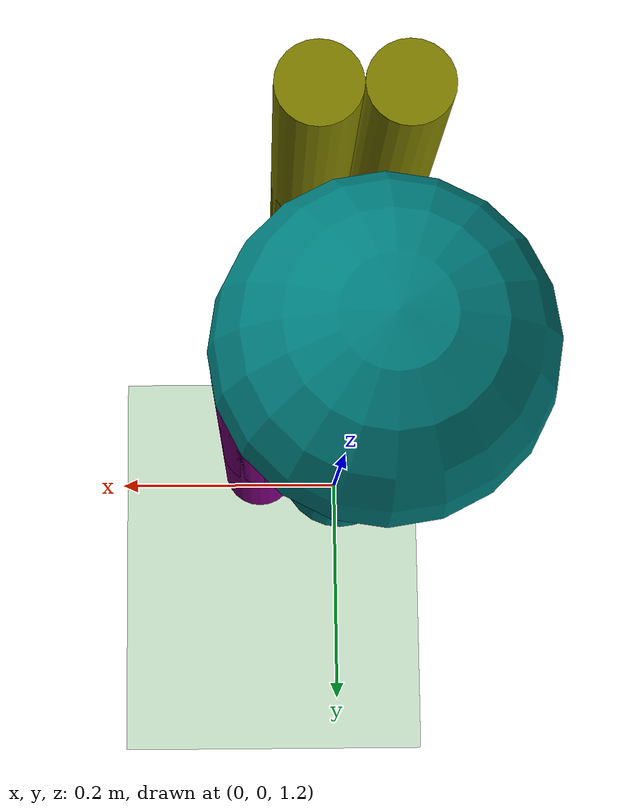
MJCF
<mujoco model="guntherthestickman">
    <compiler angle="degree"/>

    <default>
        <joint armature="0.01" damping=".1" limited="true"/>
        <geom conaffinity="0" condim="3" contype="1" friction=".5 .1 .1" rgba="0.8 0.6 .4 1"/>
    </default>

    <option integrator="Euler" timestep="0.01"/>

    <worldbody>
        <geom name="floor" pos="0 0 0" size="10 10 0.5" type="plane" rgba="0.8 0.9 0.8 1"/>
        <light diffuse=".8 .8 .8" dir="0 -.5 1" pos="0 0 5"/>

        <!-- Basis-Rumpf (Torso) -->
        <body name="torso" pos="0 0 1.5">
            <inertial pos="0 0 0" mass="20" diaginertia="0.1 0.1 0.1"/>
            <freejoint name="root"/>
            <geom name="torso_geom" size="0.05 0.2" type="cylinder" rgba="0 0.5 0.5 1"/>

            <!-- Kopf -->
            <body name="head" pos="0 0 0.3">
                <inertial pos="0 0 0" mass="1" diaginertia="0.1 0.1 0.1"/>
                <geom name="head_geom" size="0.1" type="sphere" rgba="0 0.5 0.5 1"/>
                <joint axis="0 1 0" name="head_joint" range="-20 20" type="hinge"/>
            </body>

            <!-- Rechter Arm -->
            <body name="right_upper_arm" pos="0.07 0 0.1">
                <inertial pos="0 0 0" mass="2" diaginertia="0.1 0.1 0.1"/>
                <joint axis="0 0 1" name="right_shoulder_z" range="-90 90" type="hinge"/>
                <joint axis="0 1 0" name="right_shoulder_y" range="-180 90" type="hinge"/>
                <geom name="right_upper_arm_geom" size="0.03 0.15" type="cylinder" rgba="0.5 0 0.5 1"/>
                <!-- Unterer Arm -->
                <body name="right_lower_arm" pos="0 0 -0.15">
                    <inertial pos="0 0 0" mass="1" diaginertia="0.1 0.1 0.1"/>
                    <joint axis="0 1 0" name="right_elbow" range="0 150" type="hinge"/>
                    <geom name="right_lower_arm_geom" size="0.03 0.15" type="cylinder" rgba="0.5 0 0.5 1"/>
                </body>
            </body>

            <!-- Linker Arm -->
            <body name="left_upper_arm" pos="-0.07 0 0.1">
                <inertial pos="0 0 0" mass="2" diaginertia="0.1 0.1 0.1"/>
                <joint axis="0 0 1" name="left_shoulder_z" range="-90 90" type="hinge"/>
                <joint axis="0 1 0" name="left_shoulder_y" range="-90 180" type="hinge"/>
                <geom name="left_upper_arm_geom" size="0.03 0.15" type="cylinder" rgba="0.5 0 0.5 1"/>
                <!-- Unterer Arm -->
                <body name="left_lower_arm" pos="0 0 -0.15">
                    <inertial pos="0 0 0" mass="1" diaginertia="0.1 0.1 0.1"/>
                    <joint axis="0 1 0" name="left_elbow" range="0 150" type="hinge"/>
                    <geom name="left_lower_arm_geom" size="0.03 0.15" type="cylinder" rgba="0.5 0 0.5 1"/>
                </body>
            </body>

            <!-- Rechter Oberschenkel (Upper Leg) -->
            <body name="right_upper_leg" pos="0.03 -0.2 0">
                <inertial pos="0 0 0" mass="5" diaginertia="0.1 0.1 0.1"/>
                <joint axis="0 1 0" name="right_hip" range="-120 60" type="hinge"/>
                <geom name="right_upper_leg_geom" size="0.03 0.2" type="cylinder" rgba="0.5 0.5 0 1"/>
                <!-- Unterschenkel (Lower Leg) -->
                <body name="right_lower_leg" pos="0 0 -0.2">
                    <inertial pos="0 0 0" mass="3" diaginertia="0.1 0.1 0.1"/>
                    <joint axis="0 1 0" name="right_knee" range="0 150" type="hinge"/>
                    <geom name="right_lower_leg_geom" size="0.03 0.2" type="cylinder" rgba="0.5 0.5 0 1"/>
                </body>
            </body>

            <!-- Linker Oberschenkel -->
            <body name="left_upper_leg" pos="-0.03 -0.2 0">
                <inertial pos="0 0 0" mass="5" diaginertia="0.1 0.1 0.1"/>
                <joint axis="0 1 0" name="left_hip" range="-120 60" type="hinge"/>
                <geom name="left_upper_leg_geom" size="0.03 0.2" type="cylinder" rgba="0.5 0.5 0 1"/>
                <!-- Unterschenkel (Lower Leg) -->
                <body name="left_lower_leg" pos="0 0 -0.2">
                    <inertial pos="0 0 0" mass="3" diaginertia="0.1 0.1 0.1"/>
                    <joint axis="0 1 0" name="left_knee" range="0 150" type="hinge"/>
                    <geom name="left_lower_leg_geom" size="0.03 0.2" type="cylinder" rgba="0.5 0.5 0 1"/>
                </body>
            </body>
        </body>
    </worldbody>

    <actuator>
        <!-- Right side -->
        <!-- Arm -->
        <motor name="right_shoulder_z_motor" joint="right_shoulder_z" gear="100"/>
        <motor name="right_shoulder_y_motor" joint="right_shoulder_y" gear="100"/>
        <motor name="right_elbow_motor" joint="right_elbow" gear="50"/>
        <!-- Leg -->
        <motor name="right_knee_motor" joint="right_knee" gear="150"/>
        <motor name="right_hip_motor" joint="right_hip" gear="150"/>

        <!-- Left side -->
        <!-- Arm -->
        <motor name="left_shoulder_z_motor" joint="left_shoulder_z" gear="100"/>
        <motor name="left_shoulder_y_motor" joint="left_shoulder_y" gear="100"/>
        <motor name="left_elbow_motor" joint="left_elbow" gear="50"/>
        <!-- Leg -->
        <motor name="left_knee_motor" joint="left_knee" gear="150"/>
        <motor name="left_hip_motor" joint="left_hip" gear="150"/>
    </actuator>
</mujoco>
